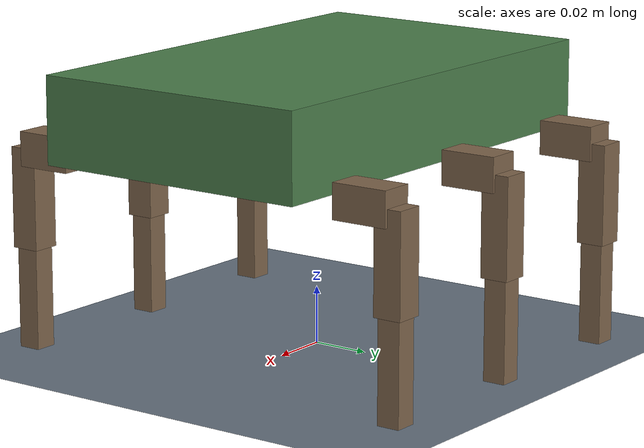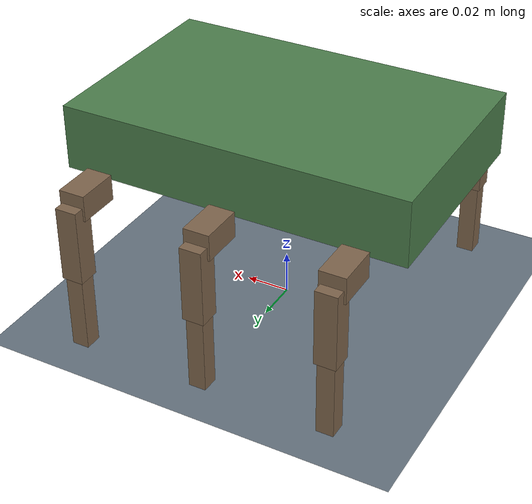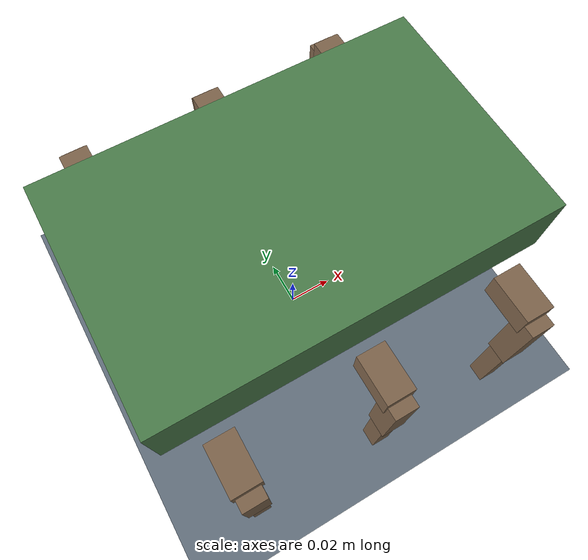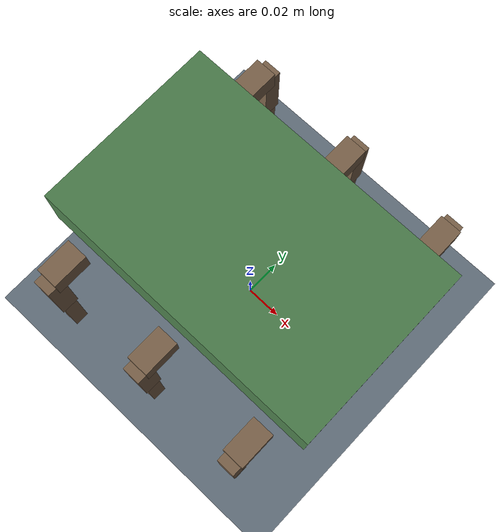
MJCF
<!-- Minimal MJCF for 6-legged insect (same topology as six_leg_insect.urdf).
     Used by C++ run_mujoco. Install: pip install mujoco -->
<mujoco model="six_leg_insect">
  <option timestep="0.002" gravity="0 0 -9.81"/>
  <default>
    <joint armature="0.001" damping="0.02"/>
    <geom friction="3.2 0.5 0.5" condim="3"/>
  </default>
  <worldbody>
    <geom name="floor" type="plane" size="1 1 0.01" rgba="0.4 0.45 0.5 1"/>
    <body name="base_link" pos="0 0 0.085">
      <freejoint name="base_free"/>
      <geom name="base_geom" type="box" size="0.08 0.05 0.015" mass="0.2" rgba="0.3 0.5 0.3 1"/>
      <body name="L1_coxa" pos="0.06 0.055 -0.015">
        <joint name="L1_coxa" type="hinge" axis="0 1 0" range="-0.8 0.8"/>
        <geom type="box" size="0.006 0.01 0.006" pos="0 0.01 0" mass="0.006" rgba="0.5 0.4 0.3 1"/>
        <body name="L1_femur" pos="0 0.02 0">
          <joint name="L1_femur" type="hinge" axis="0 1 0" range="-1.2 0.5"/>
          <geom type="box" size="0.005 0.005 0.0175" pos="0 0 -0.0175" mass="0.008" rgba="0.5 0.4 0.3 1"/>
          <body name="L1_tibia" pos="0 0 -0.035">
            <joint name="L1_tibia" type="hinge" axis="0 1 0" range="-2.0 0.3"/>
            <geom name="L1_foot" type="box" size="0.004 0.004 0.0175" pos="0 0 -0.0175" mass="0.008" rgba="0.5 0.4 0.3 1"/>
          </body>
        </body>
      </body>
      <body name="L2_coxa" pos="0 0.055 -0.015">
        <joint name="L2_coxa" type="hinge" axis="0 1 0" range="-0.8 0.8"/>
        <geom type="box" size="0.006 0.01 0.006" pos="0 0.01 0" mass="0.006" rgba="0.5 0.4 0.3 1"/>
        <body name="L2_femur" pos="0 0.02 0">
          <joint name="L2_femur" type="hinge" axis="0 1 0" range="-1.2 0.5"/>
          <geom type="box" size="0.005 0.005 0.0175" pos="0 0 -0.0175" mass="0.008" rgba="0.5 0.4 0.3 1"/>
          <body name="L2_tibia" pos="0 0 -0.035">
            <joint name="L2_tibia" type="hinge" axis="0 1 0" range="-2.0 0.3"/>
            <geom name="L2_foot" type="box" size="0.004 0.004 0.0175" pos="0 0 -0.0175" mass="0.008" rgba="0.5 0.4 0.3 1"/>
          </body>
        </body>
      </body>
      <body name="L3_coxa" pos="-0.06 0.055 -0.015">
        <joint name="L3_coxa" type="hinge" axis="0 1 0" range="-0.8 0.8"/>
        <geom type="box" size="0.006 0.01 0.006" pos="0 0.01 0" mass="0.006" rgba="0.5 0.4 0.3 1"/>
        <body name="L3_femur" pos="0 0.02 0">
          <joint name="L3_femur" type="hinge" axis="0 1 0" range="-1.2 0.5"/>
          <geom type="box" size="0.005 0.005 0.0175" pos="0 0 -0.0175" mass="0.008" rgba="0.5 0.4 0.3 1"/>
          <body name="L3_tibia" pos="0 0 -0.035">
            <joint name="L3_tibia" type="hinge" axis="0 1 0" range="-2.0 0.3"/>
            <geom name="L3_foot" type="box" size="0.004 0.004 0.0175" pos="0 0 -0.0175" mass="0.008" rgba="0.5 0.4 0.3 1"/>
          </body>
        </body>
      </body>
      <!-- R1: mirrored geometry (no 180 euler); -Y axis and positions so leg extends to the right -->
      <body name="R1_coxa" pos="0.06 -0.055 -0.015">
        <joint name="R1_coxa" type="hinge" axis="0 -1 0" range="-0.8 0.8"/>
        <geom type="box" size="0.006 0.01 0.006" pos="0 -0.01 0" mass="0.006" rgba="0.5 0.4 0.3 1"/>
        <body name="R1_femur" pos="0 -0.02 0">
          <joint name="R1_femur" type="hinge" axis="0 -1 0" range="-1.2 0.5"/>
          <geom type="box" size="0.005 0.005 0.0175" pos="0 0 -0.0175" mass="0.008" rgba="0.5 0.4 0.3 1"/>
          <body name="R1_tibia" pos="0 0 -0.035">
            <joint name="R1_tibia" type="hinge" axis="0 -1 0" range="-2.0 0.3"/>
            <geom name="R1_foot" type="box" size="0.004 0.004 0.0175" pos="0 0 -0.0175" mass="0.008" rgba="0.5 0.4 0.3 1"/>
          </body>
        </body>
      </body>
      <body name="R2_coxa" pos="0 -0.055 -0.015">
        <joint name="R2_coxa" type="hinge" axis="0 -1 0" range="-0.8 0.8"/>
        <geom type="box" size="0.006 0.01 0.006" pos="0 -0.01 0" mass="0.006" rgba="0.5 0.4 0.3 1"/>
        <body name="R2_femur" pos="0 -0.02 0">
          <joint name="R2_femur" type="hinge" axis="0 -1 0" range="-1.2 0.5"/>
          <geom type="box" size="0.005 0.005 0.0175" pos="0 0 -0.0175" mass="0.008" rgba="0.5 0.4 0.3 1"/>
          <body name="R2_tibia" pos="0 0 -0.035">
            <joint name="R2_tibia" type="hinge" axis="0 -1 0" range="-2.0 0.3"/>
            <geom name="R2_foot" type="box" size="0.004 0.004 0.0175" pos="0 0 -0.0175" mass="0.008" rgba="0.5 0.4 0.3 1"/>
          </body>
        </body>
      </body>
      <body name="R3_coxa" pos="-0.06 -0.055 -0.015">
        <joint name="R3_coxa" type="hinge" axis="0 -1 0" range="-0.8 0.8"/>
        <geom type="box" size="0.006 0.01 0.006" pos="0 -0.01 0" mass="0.006" rgba="0.5 0.4 0.3 1"/>
        <body name="R3_femur" pos="0 -0.02 0">
          <joint name="R3_femur" type="hinge" axis="0 -1 0" range="-1.2 0.5"/>
          <geom type="box" size="0.005 0.005 0.0175" pos="0 0 -0.0175" mass="0.008" rgba="0.5 0.4 0.3 1"/>
          <body name="R3_tibia" pos="0 0 -0.035">
            <joint name="R3_tibia" type="hinge" axis="0 -1 0" range="-2.0 0.3"/>
            <geom name="R3_foot" type="box" size="0.004 0.004 0.0175" pos="0 0 -0.0175" mass="0.008" rgba="0.5 0.4 0.3 1"/>
          </body>
        </body>
      </body>
    </body>
  </worldbody>
  <actuator>
    <!-- gear > 1 amplifies ctrl (torque = ctrl * gear) so small ctrl produces visible motion -->
    <motor name="L1_coxa" joint="L1_coxa" ctrlrange="-1 1" gear="20"/>
    <motor name="L1_femur" joint="L1_femur" ctrlrange="-1 1" gear="20"/>
    <motor name="L1_tibia" joint="L1_tibia" ctrlrange="-1 1" gear="20"/>
    <motor name="L2_coxa" joint="L2_coxa" ctrlrange="-1 1" gear="20"/>
    <motor name="L2_femur" joint="L2_femur" ctrlrange="-1 1" gear="20"/>
    <motor name="L2_tibia" joint="L2_tibia" ctrlrange="-1 1" gear="20"/>
    <motor name="L3_coxa" joint="L3_coxa" ctrlrange="-1 1" gear="20"/>
    <motor name="L3_femur" joint="L3_femur" ctrlrange="-1 1" gear="20"/>
    <motor name="L3_tibia" joint="L3_tibia" ctrlrange="-1 1" gear="20"/>
    <motor name="R1_coxa" joint="R1_coxa" ctrlrange="-1 1" gear="20"/>
    <motor name="R1_femur" joint="R1_femur" ctrlrange="-1 1" gear="20"/>
    <motor name="R1_tibia" joint="R1_tibia" ctrlrange="-1 1" gear="20"/>
    <motor name="R2_coxa" joint="R2_coxa" ctrlrange="-1 1" gear="20"/>
    <motor name="R2_femur" joint="R2_femur" ctrlrange="-1 1" gear="20"/>
    <motor name="R2_tibia" joint="R2_tibia" ctrlrange="-1 1" gear="20"/>
    <motor name="R3_coxa" joint="R3_coxa" ctrlrange="-1 1" gear="20"/>
    <motor name="R3_femur" joint="R3_femur" ctrlrange="-1 1" gear="20"/>
    <motor name="R3_tibia" joint="R3_tibia" ctrlrange="-1 1" gear="20"/>
  </actuator>
</mujoco>
